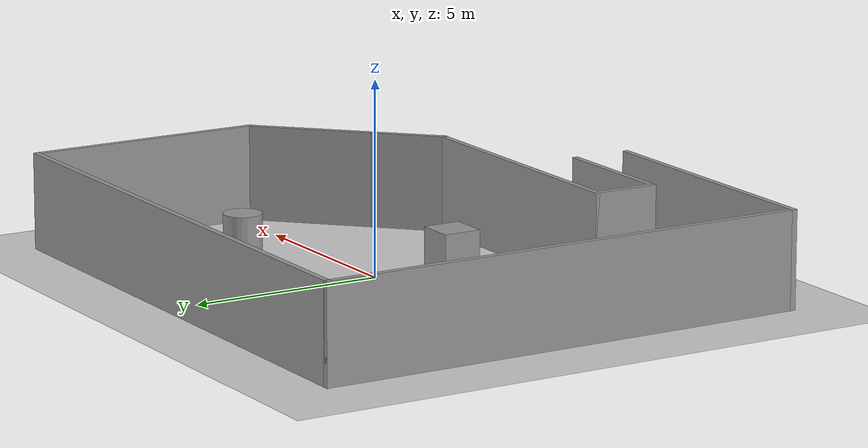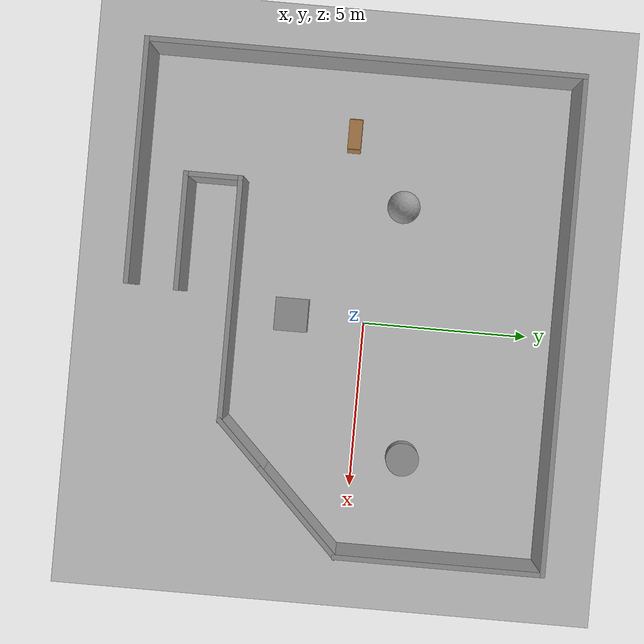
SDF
<sdf version="1.6">
 <world name="default">
  <light name="sun" type="directional">
   <pose>0 0 10 0 -0 0</pose>
   <diffuse>0.8 0.8 0.8 1</diffuse>
   <specular>0.1 0.1 0.1 1</specular>
   <attenuation>
    <range>1000</range>
    <constant>0.9</constant>
    <linear>0.01</linear>
    <quadratic>0.001</quadratic>
   </attenuation>
   <direction>-0.5 0.5 -1</direction>
  </light>
  <model name="ground_plane">
   <static>1</static>
   <link name="link">
    <collision name="collision">
     <geometry><plane><normal>0 0 1</normal><size>100 100</size></plane></geometry>
     <surface><friction><ode><mu>100</mu><mu2>50</mu2></ode></friction></surface>
    </collision>
    <visual name="visual">
     <cast_shadows>0</cast_shadows>
     <geometry><plane><normal>0 0 1</normal><size>100 100</size></plane></geometry>
     <material>
      <script><uri>file://media/materials/scripts/gazebo.material</uri><name>Gazebo/Grey</name></script>
     </material>
    </visual>
   </link>
  </model>
  <gravity>0 0 -9.8</gravity>
  <magnetic_field>6e-06 2.3e-05 -4.2e-05</magnetic_field>
  <atmosphere type="adiabatic"/>
  <physics name="default_physics" default="0" type="ode">
   <max_step_size>0.001</max_step_size>
   <real_time_factor>1</real_time_factor>
   <real_time_update_rate>1000</real_time_update_rate>
  </physics>
  <scene><ambient>0.4 0.4 0.4 1</ambient><background>0.7 0.7 0.7 1</background><shadows>1</shadows></scene>
  <spherical_coordinates>
   <surface_model>EARTH_WGS84</surface_model>
   <latitude_deg>0</latitude_deg>
   <longitude_deg>0</longitude_deg>
   <elevation>0</elevation>
   <heading_deg>0</heading_deg>
  </spherical_coordinates>
  <model name="mapping">
   <pose>-0.426893 -0.591691 0 0 -0 0</pose>
   <link name="Wall_16">
    <collision name="Wall_16_Collision">
     <geometry><box><size>7.25 0.15 2.5</size></box></geometry>
     <pose>0 0 1.25 0 -0 0</pose>
    </collision>
    <visual name="Wall_16_Visual">
     <pose>0 0 1.25 0 -0 0</pose>
     <geometry><box><size>7.25 0.15 2.5</size></box></geometry>
     <material>
      <script><uri>file://media/materials/scripts/gazebo.material</uri><name>Gazebo/Grey</name></script>
      <ambient>1 1 1 1</ambient>
     </material>
    </visual>
    <pose>-3.76553 -6.425 0 0 -0 3.14159</pose>
   </link>
   <link name="Wall_17">
    <collision name="Wall_17_Collision">
     <geometry><box><size>13 0.15 2.5</size></box></geometry>
     <pose>0 0 1.25 0 -0 0</pose>
    </collision>
    <visual name="Wall_17_Visual">
     <pose>0 0 1.25 0 -0 0</pose>
     <geometry><box><size>13 0.15 2.5</size></box></geometry>
     <material>
      <script><uri>file://media/materials/scripts/gazebo.material</uri><name>Gazebo/Grey</name></script>
      <ambient>1 1 1 1</ambient>
     </material>
    </visual>
    <pose>-7.31553 0 0 0 -0 1.5708</pose>
   </link>
   <link name="Wall_18">
    <collision name="Wall_18_Collision">
     <geometry><box><size>14.75 0.15 2.5</size></box></geometry>
     <pose>0 0 1.25 0 -0 0</pose>
    </collision>
    <visual name="Wall_18_Visual">
     <pose>0 0 1.25 0 -0 0</pose>
     <geometry><box><size>14.75 0.15 2.5</size></box></geometry>
     <material>
      <script><uri>file://media/materials/scripts/gazebo.material</uri><name>Gazebo/Grey</name></script>
      <ambient>1 1 1 1</ambient>
     </material>
    </visual>
    <pose>-0.015533 6.425 0 0 -0 0</pose>
   </link>
   <link name="Wall_19">
    <collision name="Wall_19_Collision">
     <geometry><box><size>6.25 0.15 2.5</size></box></geometry>
     <pose>0 0 1.25 0 -0 0</pose>
    </collision>
    <visual name="Wall_19_Visual">
     <pose>0 0 1.25 0 -0 0</pose>
     <geometry><box><size>6.25 0.15 2.5</size></box></geometry>
     <material>
      <script><uri>file://media/materials/scripts/gazebo.material</uri><name>Gazebo/Grey</name></script>
      <ambient>1 1 1 1</ambient>
     </material>
    </visual>
    <pose>7.28447 3.375 0 0 0 -1.5708</pose>
   </link>
   <link name="Wall_20">
    <collision name="Wall_20_Collision">
     <geometry><box><size>3.5 0.15 2.5</size></box></geometry>
     <pose>0 0 1.25 0 -0 0</pose>
    </collision>
    <visual name="Wall_20_Visual">
     <pose>0 0 1.25 0 -0 0</pose>
     <geometry><box><size>3.5 0.15 2.5</size></box></geometry>
     <material>
      <script><uri>file://media/materials/scripts/gazebo.material</uri><name>Gazebo/Grey</name></script>
      <ambient>1 1 1 1</ambient>
     </material>
    </visual>
    <pose>6.10006 -0.859404 0 0 0 -2.35619</pose>
   </link>
   <link name="Wall_21">
    <collision name="Wall_21_Collision">
     <geometry><box><size>2 0.15 2.5</size></box></geometry>
     <pose>0 0 1.25 0 -0 0</pose>
    </collision>
    <visual name="Wall_21_Visual">
     <pose>0 0 1.25 0 -0 0</pose>
     <geometry><box><size>2 0.15 2.5</size></box></geometry>
     <material>
      <script><uri>file://media/materials/scripts/gazebo.material</uri><name>Gazebo/Grey</name></script>
      <ambient>1 1 1 1</ambient>
     </material>
    </visual>
    <pose>4.26159 -2.69788 0 0 0 -2.35619</pose>
   </link>
   <link name="Wall_22">
    <collision name="Wall_22_Collision">
     <geometry><box><size>7.25 0.15 2.5</size></box></geometry>
     <pose>0 0 1.25 0 -0 0</pose>
    </collision>
    <visual name="Wall_22_Visual">
     <pose>0 0 1.25 0 -0 0</pose>
     <geometry><box><size>7.25 0.15 2.5</size></box></geometry>
     <material>
      <script><uri>file://media/materials/scripts/gazebo.material</uri><name>Gazebo/Grey</name></script>
      <ambient>1 1 1 1</ambient>
     </material>
    </visual>
    <pose>0.057512 -3.35195 0 0 -0 3.14159</pose>
   </link>
   <link name="Wall_23">
    <collision name="Wall_23_Collision">
     <geometry><box><size>1.75 0.15 2.5</size></box></geometry>
     <pose>0 0 1.25 0 -0 0</pose>
    </collision>
    <visual name="Wall_23_Visual">
     <pose>0 0 1.25 0 -0 0</pose>
     <geometry><box><size>1.75 0.15 2.5</size></box></geometry>
     <material>
      <script><uri>file://media/materials/scripts/gazebo.material</uri><name>Gazebo/Grey</name></script>
      <ambient>1 1 1 1</ambient>
     </material>
    </visual>
    <pose>-3.49249 -4.15196 0 0 0 -1.5708</pose>
   </link>
   <link name="Wall_24">
    <collision name="Wall_24_Collision">
     <geometry><box><size>3.5 0.15 2.5</size></box></geometry>
     <pose>0 0 1.25 0 -0 0</pose>
    </collision>
    <visual name="Wall_24_Visual">
     <pose>0 0 1.25 0 -0 0</pose>
     <geometry><box><size>3.5 0.15 2.5</size></box></geometry>
     <material>
      <script><uri>file://media/materials/scripts/gazebo.material</uri><name>Gazebo/Grey</name></script>
      <ambient>1 1 1 1</ambient>
     </material>
    </visual>
    <pose>-1.81749 -4.95195 0 0 -0 0</pose>
   </link>
   <static>1</static>
  </model>
  <model name="bookshelf_0">
   <static>1</static>
   <link name="link">
    <inertial><mass>1</mass></inertial>
    <collision name="back">
     <pose>0 0.005 0.6 0 -0 0</pose>
     <geometry><box><size>0.9 0.01 1.2</size></box></geometry>
    </collision>
    <visual name="visual1">
     <pose>0 0.005 0.6 0 -0 0</pose>
     <geometry><box><size>0.9 0.01 1.2</size></box></geometry>
     <material>
      <script><uri>file://media/materials/scripts/gazebo.material</uri><name>Gazebo/Wood</name></script>
     </material>
    </visual>
    <collision name="left_side">
     <pose>0.45 -0.195 0.6 0 -0 0</pose>
     <geometry><box><size>0.02 0.4 1.2</size></box></geometry>
    </collision>
    <visual name="visual2">
     <pose>0.45 -0.195 0.6 0 -0 0</pose>
     <geometry><box><size>0.02 0.4 1.2</size></box></geometry>
     <material>
      <script><uri>file://media/materials/scripts/gazebo.material</uri><name>Gazebo/Wood</name></script>
     </material>
    </visual>
    <collision name="right_side">
     <pose>-0.45 -0.195 0.6 0 -0 0</pose>
     <geometry><box><size>0.02 0.4 1.2</size></box></geometry>
    </collision>
    <visual name="visual3">
     <pose>-0.45 -0.195 0.6 0 -0 0</pose>
     <geometry><box><size>0.02 0.4 1.2</size></box></geometry>
     <material>
      <script><uri>file://media/materials/scripts/gazebo.material</uri><name>Gazebo/Wood</name></script>
     </material>
    </visual>
    <collision name="bottom">
     <pose>0 -0.195 0.03 0 -0 0</pose>
     <geometry><box><size>0.88 0.4 0.06</size></box></geometry>
    </collision>
    <visual name="visual4">
     <pose>0 -0.195 0.03 0 -0 0</pose>
     <geometry><box><size>0.88 0.4 0.06</size></box></geometry>
     <material>
      <script><uri>file://media/materials/scripts/gazebo.material</uri><name>Gazebo/Wood</name></script>
     </material>
    </visual>
    <collision name="top">
     <pose>0 -0.195 1.19 0 -0 0</pose>
     <geometry><box><size>0.88 0.4 0.02</size></box></geometry>
    </collision>
    <visual name="visual5">
     <pose>0 -0.195 1.19 0 -0 0</pose>
     <geometry><box><size>0.88 0.4 0.02</size></box></geometry>
     <material>
      <script><uri>file://media/materials/scripts/gazebo.material</uri><name>Gazebo/Wood</name></script>
     </material>
    </visual>
    <collision name="low_shelf">
     <pose>0 -0.195 0.43 0 -0 0</pose>
     <geometry><box><size>0.88 0.4 0.02</size></box></geometry>
    </collision>
    <visual name="visual6">
     <pose>0 -0.195 0.43 0 -0 0</pose>
     <geometry><box><size>0.88 0.4 0.02</size></box></geometry>
     <material>
      <script><uri>file://media/materials/scripts/gazebo.material</uri><name>Gazebo/Wood</name></script>
     </material>
    </visual>
    <collision name="high_shelf">
     <pose>0 -0.195 0.8 0 -0 0</pose>
     <geometry><box><size>0.88 0.4 0.02</size></box></geometry>
    </collision>
    <visual name="visual7">
     <pose>0 -0.195 0.8 0 -0 0</pose>
     <geometry><box><size>0.88 0.4 0.02</size></box></geometry>
     <material>
      <script><uri>file://media/materials/scripts/gazebo.material</uri><name>Gazebo/Wood</name></script>
     </material>
    </visual>
   </link>
   <pose>-5.61513 -0.541356 0 0 -0 0</pose>
  </model>
  <model name="unit_cylinder_0">
   <pose>3.99363 1.52299 0.499997 3e-06 4e-06 -0</pose>
   <link name="link">
    <inertial>
     <mass>1</mass>
     <inertia><ixx>0.145833</ixx><ixy>0</ixy><ixz>0</ixz><iyy>0.145833</iyy><iyz>0</iyz><izz>0.125</izz></inertia>
    </inertial>
    <collision name="collision">
     <geometry><cylinder><radius>0.5</radius><length>1</length></cylinder></geometry>
    </collision>
    <visual name="visual">
     <geometry><cylinder><radius>0.5</radius><length>1</length></cylinder></geometry>
     <material>
      <script><name>Gazebo/Grey</name><uri>file://media/materials/scripts/gazebo.material</uri></script>
     </material>
    </visual>
   </link>
  </model>
  <model name="unit_sphere_0">
   <pose>-3.60817 0.924937 0.5 0 -0 0</pose>
   <link name="link">
    <inertial>
     <mass>1</mass>
     <inertia><ixx>0.1</ixx><ixy>0</ixy><ixz>0</ixz><iyy>0.1</iyy><iyz>0</iyz><izz>0.1</izz></inertia>
    </inertial>
    <collision name="collision"><geometry><sphere><radius>0.5</radius></sphere></geometry></collision>
    <visual name="visual">
     <geometry><sphere><radius>0.5</radius></sphere></geometry>
     <material>
      <script><name>Gazebo/Grey</name><uri>file://media/materials/scripts/gazebo.material</uri></script>
     </material>
    </visual>
   </link>
  </model>
  <model name="unit_box_0">
   <pose>-0.066158 -2.18631 0.5 0 -0 0</pose>
   <link name="link">
    <inertial>
     <mass>1</mass>
     <inertia>
      <ixx>0.166667</ixx>
      <ixy>0</ixy>
      <ixz>0</ixz>
      <iyy>0.166667</iyy>
      <iyz>0</iyz>
      <izz>0.166667</izz>
     </inertia>
    </inertial>
    <collision name="collision"><geometry><box><size>1 1 1</size></box></geometry></collision>
    <visual name="visual">
     <geometry><box><size>1 1 1</size></box></geometry>
     <material>
      <script><name>Gazebo/Grey</name><uri>file://media/materials/scripts/gazebo.material</uri></script>
     </material>
    </visual>
   </link>
  </model>
 </world>
</sdf>
